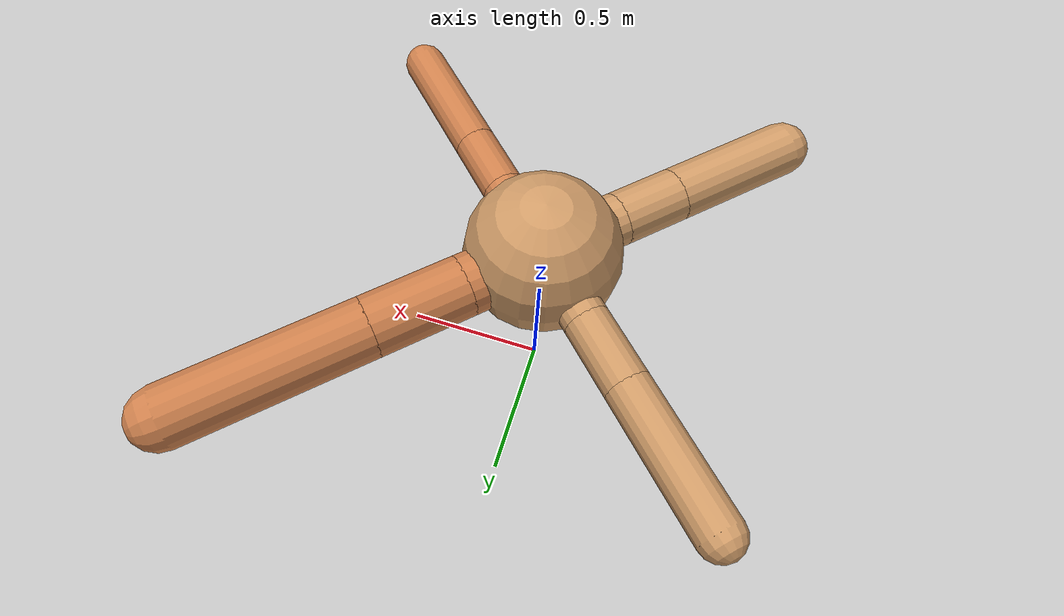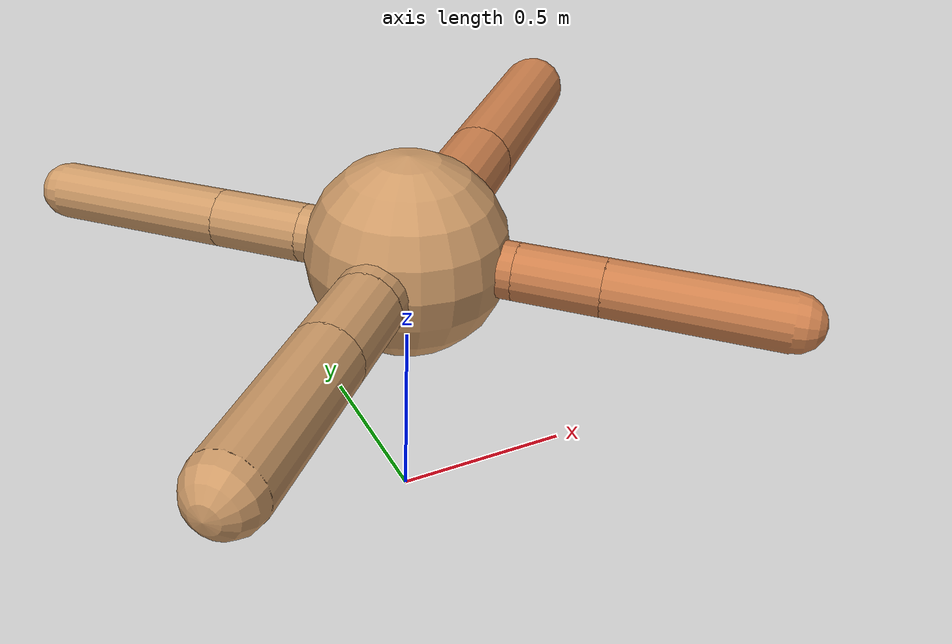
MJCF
<?xml version="1.0" ?>
<mujoco model="ant">

	<compiler angle="degree" coordinate="local" inertiafromgeom="true"/>

	<option integrator="RK4" timestep="0.01"/>

	<custom>

		<numeric data="0.0 0.0 0.55 1.0 0.0 0.0 0.0 0.0 1.0 0.0 -1.0 0.0 -1.0 0.0 1.0" name="init_qpos"/>

	</custom>

	<default>

		<joint armature="1" damping="1" limited="true"/>

		<geom conaffinity="0" condim="3" density="5.0" friction="1.5 0.1 0.1" margin="0.01" rgba="0.8 0.6 0.4 1"/>

	</default>

	<worldbody>

		<body name="torso" pos="0 0 0.75">

			<geom name="torso_geom" pos="0 0 0" size="0.26205489385887837" type="sphere"/>

			<!--joint armature="0" damping="0" limited="false" margin="0.01" name="root" pos="0 0 0" type="free"/-->

			<body name="front_left_leg" pos="0 0 0">

				<geom fromto="0 0 0 0.2 0.2 0" name="aux_1_geom" size="0.1019166880775642" type="capsule" rgba=".8 .5 .3 1"/>

				<body name="aux_1" pos="0.2 0.2 0">

					<joint axis="0 0 1" name="hip_1" pos="0.0 0.0 0.0" range="-40 40" type="hinge"/>

					<geom fromto="0 0 0 0.22941457609891014 0.22941457609891014 0" name="left_leg_geom" size="0.1019166880775642" type="capsule" rgba=".8 .5 .3 1"/>

					<body pos="0.22941457609891014 0.22941457609891014 0" name="front_left_foot">

						<joint axis="-1 1 0" name="ankle_1" pos="0.0 0.0 0.0" range="30 100" type="hinge"/>

						<geom fromto="0 0 0 0.4588291521978203 0.4588291521978203 0" name="left_ankle_geom" size="0.1019166880775642" type="capsule" rgba=".8 .5 .3 1"/>

					</body>

				</body>

			</body>

			<body name="front_right_leg" pos="0 0 0">

				<geom fromto="0 0 0 -0.2 0.2 0" name="aux_2_geom" size="0.07647045923341565" type="capsule"/>

				<body name="aux_2" pos="-0.2 0.2 0">

					<joint axis="0 0 1" name="hip_2" pos="0.0 0.0 0.0" range="-40 40" type="hinge"/>

					<geom fromto="0 0 0 -0.17003258663364465 0.17003258663364465 0" name="right_leg_geom" size="0.07647045923341565" type="capsule"/>

					<body pos="-0.17003258663364465 0.17003258663364465 0" name="front_right_foot">

						<joint axis="1 1 0" name="ankle_2" pos="0.0 0.0 0.0" range="-100 -30" type="hinge"/>

						<geom fromto="0 0 0 -0.3400651732672893 0.3400651732672893 0" name="right_ankle_geom" size="0.07647045923341565" type="capsule"/>

					</body>

				</body>

			</body>

			<body name="left_back_leg" pos="0 0 0">

				<geom fromto="0 0 0 -0.2 -0.2 0" name="aux_3_geom" size="0.09100926317180591" type="capsule"/>

				<body name="aux_3" pos="-0.2 -0.2 0">

					<joint axis="0 0 1" name="hip_3" pos="0.0 0.0 0.0" range="-40 40" type="hinge"/>

					<geom fromto="0 0 0 -0.15574648042790804 -0.15574648042790804 0" name="back_leg_geom" size="0.09100926317180591" type="capsule"/>

					<body pos="-0.15574648042790804 -0.15574648042790804 0" name="left_back_foot">

						<joint axis="-1 1 0" name="ankle_3" pos="0.0 0.0 0.0" range="-100 -30" type="hinge"/>

						<geom fromto="0 0 0 -0.31149296085581607 -0.31149296085581607 0" name="third_ankle_geom" size="0.09100926317180591" type="capsule"/>

					</body>

				</body>

			</body>

			<body name="right_back_leg" pos="0 0 0">

				<geom fromto="0 0 0 0.2 -0.2 0" name="aux_4_geom" size="0.07249002408551336" type="capsule" rgba=".8 .5 .3 1"/>

				<body name="aux_4" pos="0.2 -0.2 0">

					<joint axis="0 0 1" name="hip_4" pos="0.0 0.0 0.0" range="-40 40" type="hinge"/>

					<geom fromto="0 0 0 0.15164956747577563 -0.15164956747577563 0" name="rightback_leg_geom" size="0.07249002408551336" type="capsule" rgba=".8 .5 .3 1"/>

					<body pos="0.15164956747577563 -0.15164956747577563 0" name="right_back_foot">

						<joint axis="1 1 0" name="ankle_4" pos="0.0 0.0 0.0" range="30 100" type="hinge"/>

						<geom fromto="0 0 0 0.30329913495155125 -0.30329913495155125 0" name="fourth_ankle_geom" size="0.07249002408551336" type="capsule" rgba=".8 .5 .3 1"/>

					</body>

				</body>

			</body>

		</body>

	</worldbody>

	<actuator>

		<motor ctrllimited="true" ctrlrange="-1.0 1.0" joint="hip_4" gear="150"/>

		<motor ctrllimited="true" ctrlrange="-1.0 1.0" joint="ankle_4" gear="150"/>

		<motor ctrllimited="true" ctrlrange="-1.0 1.0" joint="hip_1" gear="150"/>

		<motor ctrllimited="true" ctrlrange="-1.0 1.0" joint="ankle_1" gear="150"/>

		<motor ctrllimited="true" ctrlrange="-1.0 1.0" joint="hip_2" gear="150"/>

		<motor ctrllimited="true" ctrlrange="-1.0 1.0" joint="ankle_2" gear="150"/>

		<motor ctrllimited="true" ctrlrange="-1.0 1.0" joint="hip_3" gear="150"/>

		<motor ctrllimited="true" ctrlrange="-1.0 1.0" joint="ankle_3" gear="150"/>

	</actuator>

</mujoco>
